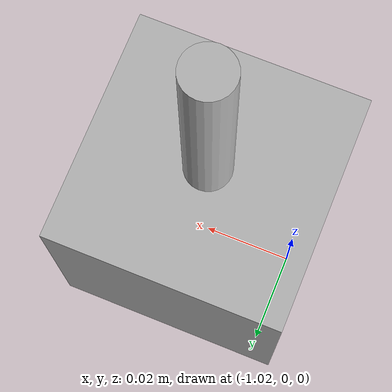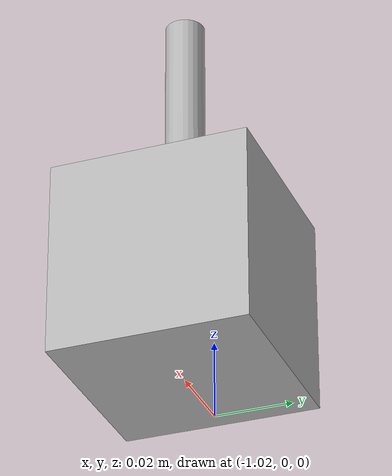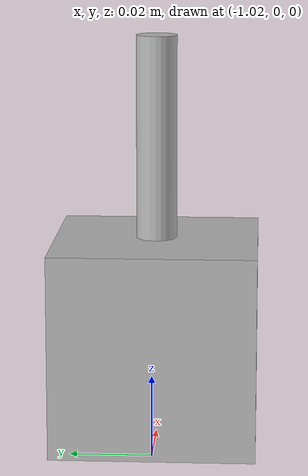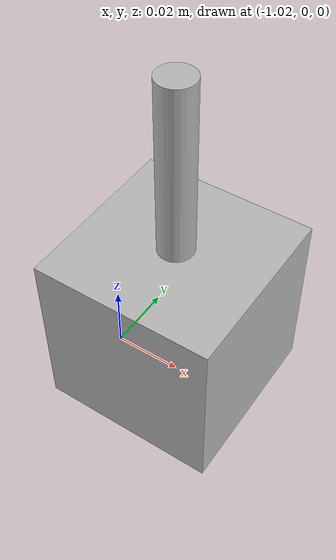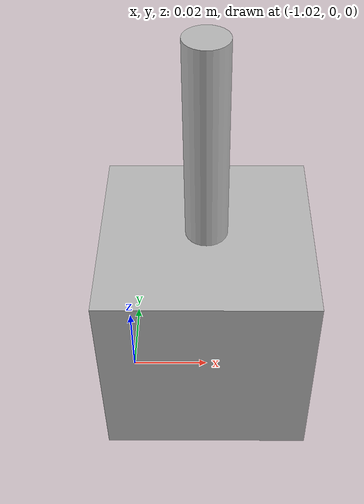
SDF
<?xml version="1.0" ?>
<sdf version="1.5">
  <model name="wifi_ap">
      <static>true</static>
      <pose>-1 0 0.025 0 0 0</pose>
      <link name="AP_link">
        <inertial>
          <mass>0.0000000001</mass>
        </inertial>
        <visual name="base">
          <geometry>
            <box>
              <size>.05 .05 .05</size>
            </box>
          </geometry>
        </visual>
        <visual name="antenna">
          <pose>0 0 .04 0 0 0</pose>
          <geometry>
            <cylinder>
              <radius>.005</radius>
              <length>.07</length>
            </cylinder>
          </geometry>
        </visual>
        <sensor name="wirelessTransmitter" type="wireless_transmitter">
          <always_on>1</always_on>
          <update_rate>1</update_rate>
          <visualize>true</visualize>
          <transceiver>
            <essid>ap_model</essid>
            <frequency>5100.0</frequency>
            <power>14.5</power>
            <gain>2.6</gain>
          </transceiver>
        </sensor>
      </link>
</model>
</sdf>
